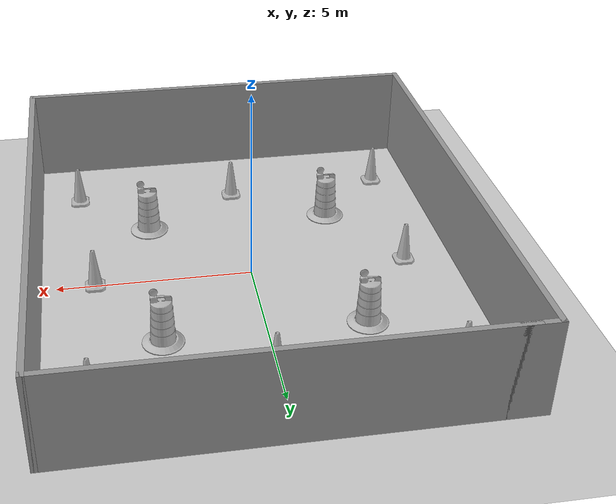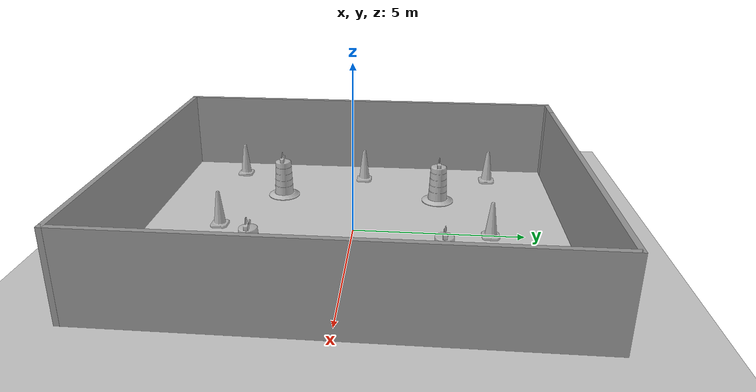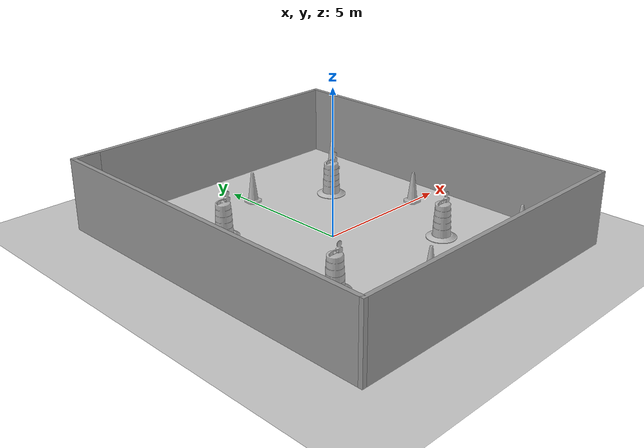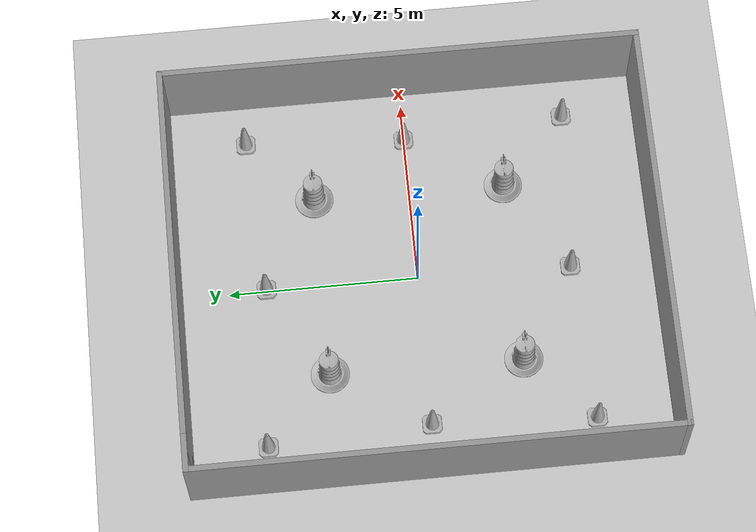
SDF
<sdf version="1.7">
 <world name="default">
  <light name="sun" type="directional">
   <pose>0 0 10 0 -0 0</pose>
   <diffuse>0.8 0.8 0.8 1</diffuse>
   <specular>0.2 0.2 0.2 1</specular>
   <attenuation>
    <range>1000</range>
    <constant>0.9</constant>
    <linear>0.01</linear>
    <quadratic>0.001</quadratic>
   </attenuation>
   <direction>-0.5 0.1 -0.9</direction>
   <spot><inner_angle>0</inner_angle><outer_angle>0</outer_angle><falloff>0</falloff></spot>
  </light>
  <model name="ground_plane">
   <static>1</static>
   <link name="link">
    <collision name="collision">
     <geometry><plane><normal>0 0 1</normal><size>100 100</size></plane></geometry>
     <surface>
      <contact><collide_bitmask>65535</collide_bitmask></contact>
      <friction><ode><mu>100</mu><mu2>50</mu2></ode></friction>
     </surface>
    </collision>
    <visual name="visual">
     <cast_shadows>0</cast_shadows>
     <geometry><plane><normal>0 0 1</normal><size>100 100</size></plane></geometry>
     <material>
      <script><uri>file://media/materials/scripts/gazebo.material</uri><name>Gazebo/Grey</name></script>
     </material>
    </visual>
   </link>
  </model>
  <gravity>0 0 -9.8</gravity>
  <magnetic_field>6e-06 2.3e-05 -4.2e-05</magnetic_field>
  <atmosphere type="adiabatic"/>
  <physics type="ode">
   <max_step_size>0.001</max_step_size>
   <real_time_factor>1</real_time_factor>
   <real_time_update_rate>1000</real_time_update_rate>
  </physics>
  <scene><ambient>0.4 0.4 0.4 1</ambient><background>0.7 0.7 0.7 1</background><shadows>1</shadows></scene>
  <audio><device>default</device></audio>
  <spherical_coordinates>
   <surface_model>EARTH_WGS84</surface_model>
   <latitude_deg>0</latitude_deg>
   <longitude_deg>0</longitude_deg>
   <elevation>0</elevation>
   <heading_deg>0</heading_deg>
  </spherical_coordinates>
  <model name="room">
   <pose>0.010204 0.00551 0 0 -0 0</pose>
   <link name="Wall_10">
    <collision name="Wall_10_Collision">
     <geometry><box><size>12.75 0.15 2.5</size></box></geometry>
     <pose>0 0 1.25 0 -0 0</pose>
    </collision>
    <visual name="Wall_10_Visual">
     <pose>0 0 1.25 0 -0 0</pose>
     <geometry><box><size>12.75 0.15 2.5</size></box></geometry>
     <material>
      <script><uri>file://media/materials/scripts/gazebo.material</uri><name>Gazebo/Grey</name></script>
      <ambient>1 1 1 1</ambient>
     </material>
     <meta><layer>0</layer></meta>
    </visual>
    <pose>-5.425 -0 0 0 -0 1.5708</pose>
   </link>
   <link name="Wall_11">
    <collision name="Wall_11_Collision">
     <geometry><box><size>1 0.15 2.5</size></box></geometry>
     <pose>0 0 1.25 0 -0 0</pose>
    </collision>
    <visual name="Wall_11_Visual">
     <pose>0 0 1.25 0 -0 0</pose>
     <geometry><box><size>1 0.15 2.5</size></box></geometry>
     <material>
      <script><uri>file://media/materials/scripts/gazebo.material</uri><name>Gazebo/Grey</name></script>
      <ambient>1 1 1 1</ambient>
     </material>
     <meta><layer>0</layer></meta>
    </visual>
    <pose>-5 6.3 0 0 -0 0</pose>
   </link>
   <link name="Wall_7">
    <collision name="Wall_7_Collision">
     <geometry><box><size>10.5 0.15 2.5</size></box></geometry>
     <pose>0 0 1.25 0 -0 0</pose>
    </collision>
    <visual name="Wall_7_Visual">
     <pose>0 0 1.25 0 -0 0</pose>
     <geometry><box><size>10.5 0.15 2.5</size></box></geometry>
     <material>
      <script><uri>file://media/materials/scripts/gazebo.material</uri><name>Gazebo/Grey</name></script>
      <ambient>1 1 1 1</ambient>
     </material>
     <meta><layer>0</layer></meta>
    </visual>
    <pose>0.25 6.3 0 0 -0 0</pose>
   </link>
   <link name="Wall_8">
    <collision name="Wall_8_Collision">
     <geometry><box><size>12.75 0.15 2.5</size></box></geometry>
     <pose>0 0 1.25 0 -0 0</pose>
    </collision>
    <visual name="Wall_8_Visual">
     <pose>0 0 1.25 0 -0 0</pose>
     <geometry><box><size>12.75 0.15 2.5</size></box></geometry>
     <material>
      <script><uri>file://media/materials/scripts/gazebo.material</uri><name>Gazebo/Grey</name></script>
      <ambient>1 1 1 1</ambient>
     </material>
     <meta><layer>0</layer></meta>
    </visual>
    <pose>5.425 -0 0 0 -0 -1.5708</pose>
   </link>
   <link name="Wall_9">
    <collision name="Wall_9_Collision">
     <geometry><box><size>11 0.15 2.5</size></box></geometry>
     <pose>0 0 1.25 0 -0 0</pose>
    </collision>
    <visual name="Wall_9_Visual">
     <pose>0 0 1.25 0 -0 0</pose>
     <geometry><box><size>11 0.15 2.5</size></box></geometry>
     <material>
      <script><uri>file://media/materials/scripts/gazebo.material</uri><name>Gazebo/Grey</name></script>
      <ambient>1 1 1 1</ambient>
     </material>
     <meta><layer>0</layer></meta>
    </visual>
    <pose>-0 -6.3 0 0 -0 3.14159</pose>
   </link>
   <static>1</static>
  </model>
  <model name="Construction Barrel">
   <link name="link">
    <inertial>
     <pose>0 0 0.4 0 -0 0</pose>
     <mass>500</mass>
     <inertia><ixx>51.2096</ixx><iyy>51.2096</iyy><izz>25</izz><ixy>0</ixy><ixz>0</ixz><iyz>0</iyz></inertia>
    </inertial>
    <collision name="collision">
     <geometry><mesh><uri>model://construction_barrel/meshes/construction_barrel.dae</uri></mesh></geometry>
    </collision>
    <visual name="visual">
     <geometry><mesh><uri>model://construction_barrel/meshes/construction_barrel.dae</uri></mesh></geometry>
    </visual>
   </link>
   <pose>-2.50057 -2.52996 -1e-06 -3e-06 -1e-06 -2.1e-05</pose>
  </model>
  <model name="Construction Barrel_0">
   <link name="link">
    <inertial>
     <pose>0 0 0.4 0 -0 0</pose>
     <mass>500</mass>
     <inertia><ixx>51.2096</ixx><iyy>51.2096</iyy><izz>25</izz><ixy>0</ixy><ixz>0</ixz><iyz>0</iyz></inertia>
    </inertial>
    <collision name="collision">
     <geometry><mesh><uri>model://construction_barrel/meshes/construction_barrel.dae</uri></mesh></geometry>
    </collision>
    <visual name="visual">
     <geometry><mesh><uri>model://construction_barrel/meshes/construction_barrel.dae</uri></mesh></geometry>
    </visual>
   </link>
   <pose>-2.44771 2.53953 -1e-06 -3e-06 -1e-06 -2e-05</pose>
  </model>
  <model name="Construction Barrel_1">
   <link name="link">
    <inertial>
     <pose>0 0 0.4 0 -0 0</pose>
     <mass>500</mass>
     <inertia><ixx>51.2096</ixx><iyy>51.2096</iyy><izz>25</izz><ixy>0</ixy><ixz>0</ixz><iyz>0</iyz></inertia>
    </inertial>
    <collision name="collision">
     <geometry><mesh><uri>model://construction_barrel/meshes/construction_barrel.dae</uri></mesh></geometry>
    </collision>
    <visual name="visual">
     <geometry><mesh><uri>model://construction_barrel/meshes/construction_barrel.dae</uri></mesh></geometry>
    </visual>
   </link>
   <pose>2.45264 -2.51654 0 0 0 -1.8e-05</pose>
  </model>
  <model name="Construction Barrel_2">
   <link name="link">
    <inertial>
     <pose>0 0 0.4 0 -0 0</pose>
     <mass>500</mass>
     <inertia><ixx>51.2096</ixx><iyy>51.2096</iyy><izz>25</izz><ixy>0</ixy><ixz>0</ixz><iyz>0</iyz></inertia>
    </inertial>
    <collision name="collision">
     <geometry><mesh><uri>model://construction_barrel/meshes/construction_barrel.dae</uri></mesh></geometry>
    </collision>
    <visual name="visual">
     <geometry><mesh><uri>model://construction_barrel/meshes/construction_barrel.dae</uri></mesh></geometry>
    </visual>
   </link>
   <pose>2.50546 2.55184 -0 0 0 -1.8e-05</pose>
  </model>
  <model name="Construction Cone">
   <link name="link">
    <collision name="collision">
     <geometry>
      <mesh><scale>10 10 10</scale><uri>model://construction_cone/meshes/construction_cone.dae</uri></mesh>
     </geometry>
    </collision>
    <visual name="visual">
     <geometry>
      <mesh><scale>10 10 10</scale><uri>model://construction_cone/meshes/construction_cone.dae</uri></mesh>
     </geometry>
    </visual>
    <inertial>
     <inertia><ixx>1</ixx><ixy>0</ixy><ixz>0</ixz><iyy>1</iyy><iyz>0</iyz><izz>1</izz></inertia>
     <mass>1</mass>
    </inertial>
   </link>
   <pose>-4.05963 0.025455 -0 0 -0 0</pose>
  </model>
  <model name="Construction Cone_0">
   <link name="link">
    <collision name="collision">
     <geometry>
      <mesh><scale>10 10 10</scale><uri>model://construction_cone/meshes/construction_cone.dae</uri></mesh>
     </geometry>
    </collision>
    <visual name="visual">
     <geometry>
      <mesh><scale>10 10 10</scale><uri>model://construction_cone/meshes/construction_cone.dae</uri></mesh>
     </geometry>
    </visual>
    <inertial>
     <inertia><ixx>1</ixx><ixy>0</ixy><ixz>0</ixz><iyy>1</iyy><iyz>0</iyz><izz>1</izz></inertia>
     <mass>1</mass>
    </inertial>
   </link>
   <pose>4.0142 0.013443 -0 0 -0 0</pose>
  </model>
  <model name="Construction Cone_1">
   <link name="link">
    <collision name="collision">
     <geometry>
      <mesh><scale>10 10 10</scale><uri>model://construction_cone/meshes/construction_cone.dae</uri></mesh>
     </geometry>
    </collision>
    <visual name="visual">
     <geometry>
      <mesh><scale>10 10 10</scale><uri>model://construction_cone/meshes/construction_cone.dae</uri></mesh>
     </geometry>
    </visual>
    <inertial>
     <inertia><ixx>1</ixx><ixy>0</ixy><ixz>0</ixz><iyy>1</iyy><iyz>0</iyz><izz>1</izz></inertia>
     <mass>1</mass>
    </inertial>
   </link>
   <pose>0.058432 4.01524 -0 0 -1e-06 0</pose>
  </model>
  <model name="Construction Cone_2">
   <link name="link">
    <collision name="collision">
     <geometry>
      <mesh><scale>10 10 10</scale><uri>model://construction_cone/meshes/construction_cone.dae</uri></mesh>
     </geometry>
    </collision>
    <visual name="visual">
     <geometry>
      <mesh><scale>10 10 10</scale><uri>model://construction_cone/meshes/construction_cone.dae</uri></mesh>
     </geometry>
    </visual>
    <inertial>
     <inertia><ixx>1</ixx><ixy>0</ixy><ixz>0</ixz><iyy>1</iyy><iyz>0</iyz><izz>1</izz></inertia>
     <mass>1</mass>
    </inertial>
   </link>
   <pose>-0.036187 -4.04221 -1e-05 -1e-06 0 0</pose>
  </model>
  <model name="Construction Cone_3">
   <link name="link">
    <collision name="collision">
     <geometry>
      <mesh><scale>10 10 10</scale><uri>model://construction_cone/meshes/construction_cone.dae</uri></mesh>
     </geometry>
    </collision>
    <visual name="visual">
     <geometry>
      <mesh><scale>10 10 10</scale><uri>model://construction_cone/meshes/construction_cone.dae</uri></mesh>
     </geometry>
    </visual>
    <inertial>
     <inertia><ixx>1</ixx><ixy>0</ixy><ixz>0</ixz><iyy>1</iyy><iyz>0</iyz><izz>1</izz></inertia>
     <mass>1</mass>
    </inertial>
   </link>
   <pose>-4.2797 -4.25219 -0 0 -0 0</pose>
  </model>
  <model name="Construction Cone_4">
   <link name="link">
    <collision name="collision">
     <geometry>
      <mesh><scale>10 10 10</scale><uri>model://construction_cone/meshes/construction_cone.dae</uri></mesh>
     </geometry>
    </collision>
    <visual name="visual">
     <geometry>
      <mesh><scale>10 10 10</scale><uri>model://construction_cone/meshes/construction_cone.dae</uri></mesh>
     </geometry>
    </visual>
    <inertial>
     <inertia><ixx>1</ixx><ixy>0</ixy><ixz>0</ixz><iyy>1</iyy><iyz>0</iyz><izz>1</izz></inertia>
     <mass>1</mass>
    </inertial>
   </link>
   <pose>-4.28539 4.28543 -1e-05 0 -0 0</pose>
  </model>
  <model name="Construction Cone_5">
   <link name="link">
    <collision name="collision">
     <geometry>
      <mesh><scale>10 10 10</scale><uri>model://construction_cone/meshes/construction_cone.dae</uri></mesh>
     </geometry>
    </collision>
    <visual name="visual">
     <geometry>
      <mesh><scale>10 10 10</scale><uri>model://construction_cone/meshes/construction_cone.dae</uri></mesh>
     </geometry>
    </visual>
    <inertial>
     <inertia><ixx>1</ixx><ixy>0</ixy><ixz>0</ixz><iyy>1</iyy><iyz>0</iyz><izz>1</izz></inertia>
     <mass>1</mass>
    </inertial>
   </link>
   <pose>4.30595 -4.29426 -0 0 -1e-06 0</pose>
  </model>
  <model name="Construction Cone_6">
   <link name="link">
    <collision name="collision">
     <geometry>
      <mesh><scale>10 10 10</scale><uri>model://construction_cone/meshes/construction_cone.dae</uri></mesh>
     </geometry>
    </collision>
    <visual name="visual">
     <geometry>
      <mesh><scale>10 10 10</scale><uri>model://construction_cone/meshes/construction_cone.dae</uri></mesh>
     </geometry>
    </visual>
    <inertial>
     <inertia><ixx>1</ixx><ixy>0</ixy><ixz>0</ixz><iyy>1</iyy><iyz>0</iyz><izz>1</izz></inertia>
     <mass>1</mass>
    </inertial>
   </link>
   <pose>4.2672 4.25653 -0 0 -0 0</pose>
  </model>
 </world>
</sdf>
